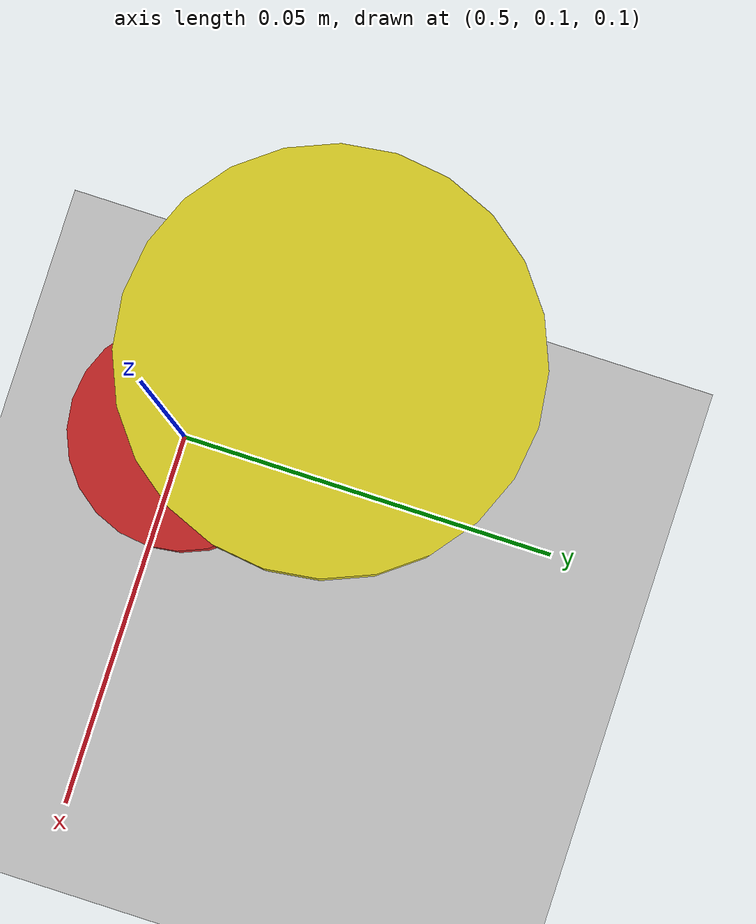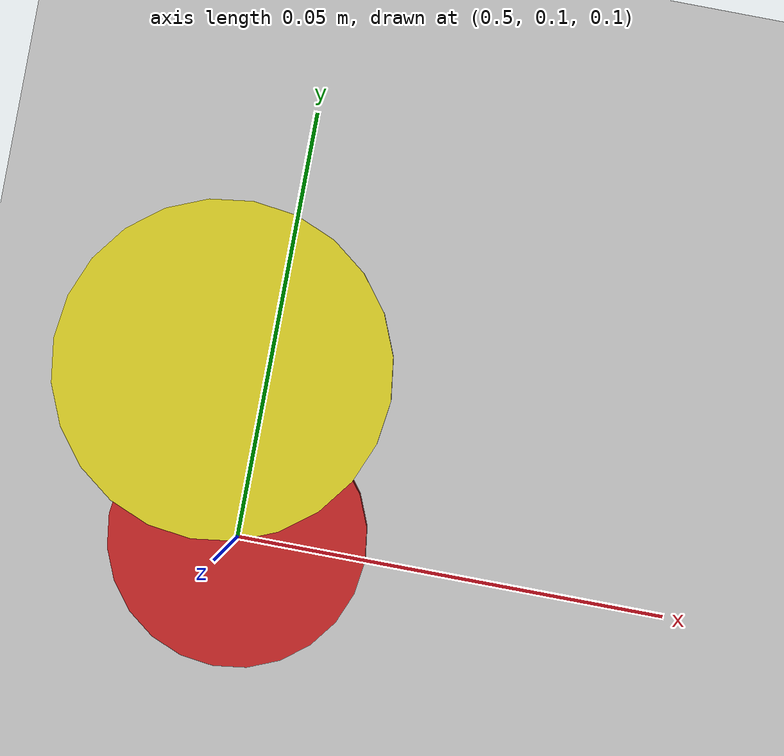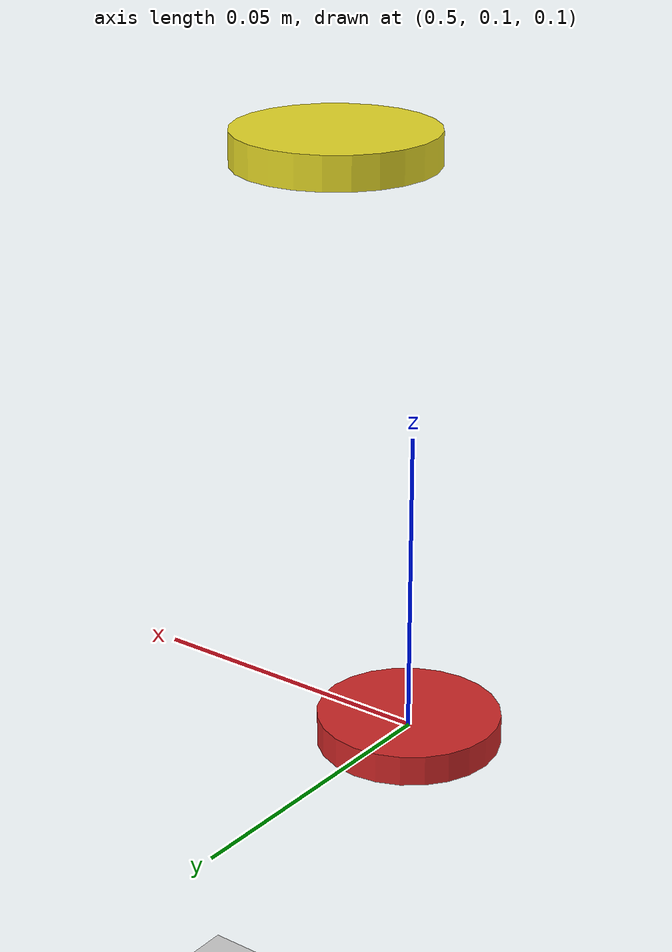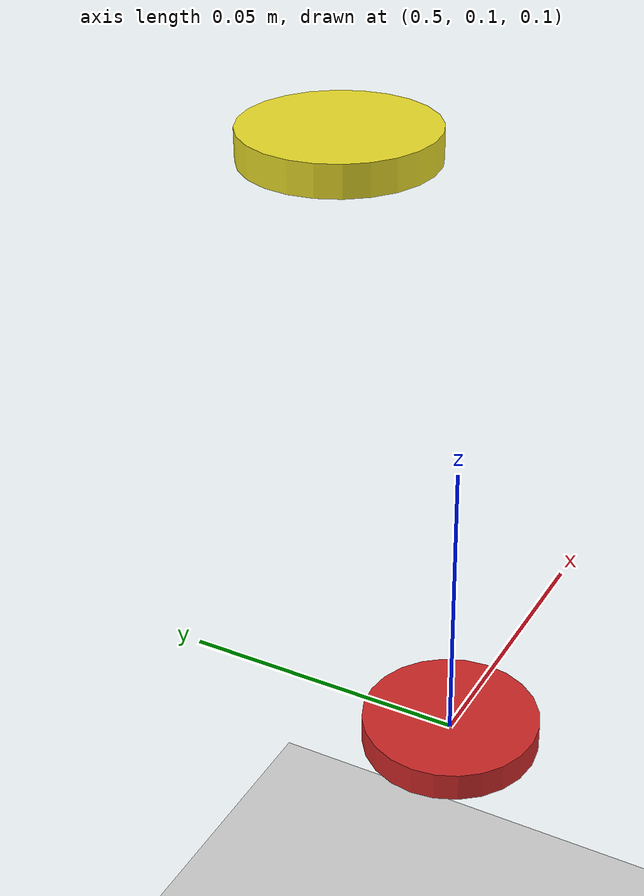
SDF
<?xml version="1.0"?>
<sdf version='1.7'>
  <world name='env_world'>

    <light name='sun' type='directional'>
      <cast_shadows>1</cast_shadows>
      <pose>0 0 10 0 -0 0</pose>
      <diffuse>0.8 0.8 0.8 1</diffuse>
      <specular>0.2 0.2 0.2 1</specular>
      <attenuation>
        <range>1000</range>
        <constant>0.9</constant>
        <linear>0.01</linear>
        <quadratic>0.001</quadratic>
      </attenuation>
      <direction>-0.5 0.1 -0.9</direction>
      <spot>
        <inner_angle>0</inner_angle>
        <outer_angle>0</outer_angle>
        <falloff>0</falloff>
      </spot>
    </light>

    <model name='ground_plane'>
      <static>1</static>
      <link name='link'>
        <collision name='collision'>

          <geometry>
            <plane>
              <normal>0 0 1</normal>
              <size>100 100</size>
            </plane>
          </geometry>

          <surface>

            <bounce>
            </bounce>

            <friction>
              <ode>
                <mu>100</mu>
                <mu2>50</mu2>
              </ode>
            </friction>

            <contact>
              <collide_bitmask>65535</collide_bitmask>
              <ode/>
            </contact>

          </surface>

          <max_contacts>10</max_contacts>

        </collision>

        <visual name='visual'>
          <cast_shadows>0</cast_shadows>
          <geometry>
            <plane>
              <normal>0 0 1</normal>
              <size>100 100</size>
            </plane>
          </geometry>
          <material>
            <script>
              <uri>file://media/materials/scripts/gazebo.material</uri>
              <name>Gazebo/Grey</name>
            </script>
          </material>
        </visual>
        <self_collide>0</self_collide>
        <enable_wind>0</enable_wind>
        <kinematic>0</kinematic>
      </link>
    </model>

    <physics type='ode'>
      <gravity>0.000000 0.000000 -9.810000</gravity>
      <max_step_size>0.001</max_step_size>
      <real_time_factor>1</real_time_factor>
      <real_time_update_rate>1000</real_time_update_rate>
    </physics>

    <scene>
      <ambient>0.4 0.4 0.4 1</ambient>
      <background>0.7 0.7 0.7 1</background>
      <shadows>1</shadows>
    </scene>

    <!-- Box -->
    <model name='chip1'>
      <pose>0.5 0.1 0.10 0 0 0</pose>
      <link name='link'>
        <inertial>
          <mass>0.001</mass>
          <inertia>
            <ixx>0.00004166667</ixx>
            <ixy>0</ixy>
            <ixz>0</ixz>
            <iyy>0.00004166667</iyy>
            <iyz>0</iyz>
            <izz>0.00004166667</izz>
          </inertia>
          <pose>0 0 0 0 -0 0</pose>
        </inertial>

        <collision name='collision'>

          <geometry>
            <cylinder>
              <radius>0.015</radius>
              <length>0.005</length>
            </cylinder>
          </geometry>

          <max_contacts>10</max_contacts>

          <surface>

            <contact>
              <ode>
                <max_vel>0.5</max_vel>
                <min_depth>0.00</min_depth>                <!-- meter -->
                <kp>10000</kp>                <!-- Dynamically 'stiffness'-equivalent coefficient for contact joints -->
                <kd>1000</kd>                <!-- Dynamically 'damping'-equivalent coefficient for contact joints -->
              </ode>
            </contact>

            <bounce>
              <restitution_coefficient>0.5</restitution_coefficient>              <!-- "max_vel" must be higher than 0.0 -->
              <threshold>0.01</threshold>
            </bounce>

            <friction>
              <ode>
                <mu>0.95</mu>
                <mu2>0.95</mu2>
              </ode>
            </friction>

          </surface>

        </collision>

        <visual name='visual'>
          <geometry>
            <cylinder>
              <radius>0.015</radius>
              <length>0.005</length>
            </cylinder>
          </geometry>
          <material>
            <script>
              <name>Gazebo/RedBright</name>
              <uri>file://media/materials/scripts/gazebo.material</uri>
            </script>
          </material>
        </visual>
        <self_collide>0</self_collide>
        <enable_wind>0</enable_wind>
        <kinematic>0</kinematic>
      </link>
    </model>

    <model name='chip2'>
      <pose>0.5 0.12 0.2 0 0 0</pose>
      <link name='link'>
        <inertial>
          <mass>0.001</mass>
          <inertia>
            <ixx>0.00004166667</ixx>
            <ixy>0</ixy>
            <ixz>0</ixz>
            <iyy>0.00004166667</iyy>
            <iyz>0</iyz>
            <izz>0.00004166667</izz>
          </inertia>
          <pose>0 0 0 0 -0 0</pose>
        </inertial>

        <collision name='collision'>

          <geometry>
            <cylinder>
              <radius>0.015</radius>
              <length>0.005</length>
            </cylinder>
          </geometry>

          <max_contacts>10</max_contacts>

          <surface>

            <contact>
              <ode>
                <max_vel>0.5</max_vel>
                <min_depth>0.00</min_depth>                <!-- meter -->
                <kp>10000</kp>                <!-- Dynamically 'stiffness'-equivalent coefficient for contact joints -->
                <kd>1000</kd>                <!-- Dynamically 'damping'-equivalent coefficient for contact joints -->
              </ode>
            </contact>

            <bounce>
              <restitution_coefficient>0.5</restitution_coefficient>              <!-- "max_vel" must be higher than 0.0 -->
              <threshold>0.01</threshold>
            </bounce>

            <friction>
              <ode>
                <mu>0.95</mu>
                <mu2>0.95</mu2>
              </ode>
            </friction>

          </surface>

        </collision>

        <visual name='visual'>
          <geometry>
            <cylinder>
              <radius>0.015</radius>
              <length>0.005</length>
            </cylinder>
          </geometry>
          <material>
            <script>
              <name>Gazebo/Yellow</name>
              <uri>file://media/materials/scripts/gazebo.material</uri>
            </script>
          </material>
        </visual>
        <self_collide>0</self_collide>
        <enable_wind>0</enable_wind>
        <kinematic>0</kinematic>
      </link>
    </model>

    <gui fullscreen='0'>
      <camera name='user_camera'>
        <pose>0.85 -1.25 1.1 0 0.4 2.2</pose>
        <view_controller>orbit</view_controller>
        <projection_type>perspective</projection_type>
      </camera>
    </gui>

  </world>
</sdf>
